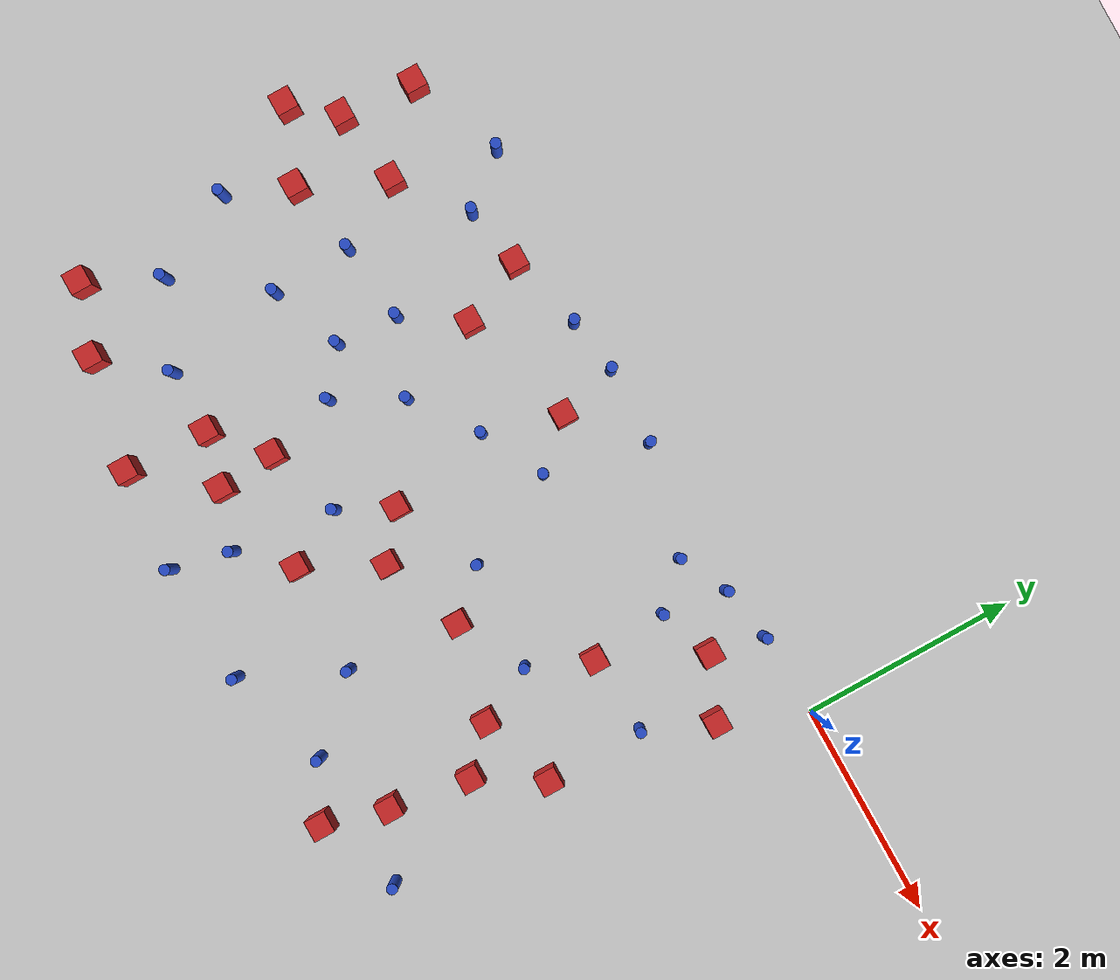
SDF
<sdf version="1.6">
 <world name="default">
  <model name="ground_plane">
   <static>1</static>
   <link name="link">
    <collision name="collision">
     <geometry><plane><normal>0 0 1</normal><size>100 100</size></plane></geometry>
     <surface><friction><ode><mu>100</mu><mu2>50</mu2></ode></friction></surface>
    </collision>
    <visual name="visual">
     <cast_shadows>0</cast_shadows>
     <geometry><plane><normal>0 0 1</normal><size>100 100</size></plane></geometry>
     <material>
      <ambient>1.0 1.0 1.0 1.0</ambient>
      <diffuse>0.8 0.8 0.8 1.0</diffuse>
      <specular>0.01 0.01 0.01 1.000000</specular>
     </material>
    </visual>
   </link>
  </model>
  <model name="pole_obstacle2">
   <static>true</static>
   <pose>-5.38142675522 -3.46980054637 7.38925637345e-09 -8.47170692798e-08 1.24976764937e-08 -1.74513093023e-07</pose>
   <link name="link">
    <pose>0 0 0.3 0 -0 0</pose>
    <inertial>
     <mass>1</mass>
     <inertia><ixx>0.145833</ixx><ixy>0</ixy><ixz>0</ixz><iyy>0.145833</iyy><iyz>0</iyz><izz>0.125</izz></inertia>
    </inertial>
    <collision name="collision">
     <geometry><cylinder><radius>0.05</radius><length>.6</length></cylinder></geometry>
    </collision>
    <visual name="visual">
     <geometry><cylinder><radius>0.05</radius><length>.6</length></cylinder></geometry>
     <material>
      <script><name>Gazebo/Blue</name><uri>file://media/materials/scripts/gazebo.material</uri></script>
     </material>
    </visual>
   </link>
  </model>
  <model name="square_post_obstacle15">
   <static>true</static>
   <pose>-6.63554746986 -1.0725611367 1.91545236811e-07 -7.35059704564e-06 1.12565212e-07 2.39332434364e-05</pose>
   <link name="link">
    <pose>0 0 0.25 0 -0 0</pose>
    <inertial>
     <mass>100</mass>
     <inertia>
      <ixx>0.166667</ixx>
      <ixy>0</ixy>
      <ixz>0</ixz>
      <iyy>0.166667</iyy>
      <iyz>0</iyz>
      <izz>0.166667</izz>
     </inertia>
    </inertial>
    <collision name="collision"><geometry><box><size>.2 .2 .5</size></box></geometry></collision>
    <visual name="visual">
     <geometry><box><size>.2 .2 .5</size></box></geometry>
     <material>
      <script><name>Gazebo/Red</name><uri>file://media/materials/scripts/gazebo.material</uri></script>
     </material>
    </visual>
   </link>
  </model>
  <model name="square_post_obstacle16">
   <static>true</static>
   <pose>-0.980387862571 -2.91094023249 1.91545236811e-07 -7.35059704564e-06 1.12565212e-07 2.39332434364e-05</pose>
   <link name="link">
    <pose>0 0 0.25 0 -0 0</pose>
    <inertial>
     <mass>100</mass>
     <inertia>
      <ixx>0.166667</ixx>
      <ixy>0</ixy>
      <ixz>0</ixz>
      <iyy>0.166667</iyy>
      <iyz>0</iyz>
      <izz>0.166667</izz>
     </inertia>
    </inertial>
    <collision name="collision"><geometry><box><size>.2 .2 .5</size></box></geometry></collision>
    <visual name="visual">
     <geometry><box><size>.2 .2 .5</size></box></geometry>
     <material>
      <script><name>Gazebo/Red</name><uri>file://media/materials/scripts/gazebo.material</uri></script>
     </material>
    </visual>
   </link>
  </model>
  <model name="square_post_obstacle19">
   <static>true</static>
   <pose>-4.28214756523 -3.59136067005 1.91545236811e-07 -7.35059704564e-06 1.12565212e-07 2.39332434364e-05</pose>
   <link name="link">
    <pose>0 0 0.25 0 -0 0</pose>
    <inertial>
     <mass>100</mass>
     <inertia>
      <ixx>0.166667</ixx>
      <ixy>0</ixy>
      <ixz>0</ixz>
      <iyy>0.166667</iyy>
      <iyz>0</iyz>
      <izz>0.166667</izz>
     </inertia>
    </inertial>
    <collision name="collision"><geometry><box><size>.2 .2 .5</size></box></geometry></collision>
    <visual name="visual">
     <geometry><box><size>.2 .2 .5</size></box></geometry>
     <material>
      <script><name>Gazebo/Red</name><uri>file://media/materials/scripts/gazebo.material</uri></script>
     </material>
    </visual>
   </link>
  </model>
  <model name="square_post_obstacle22">
   <static>true</static>
   <pose>-0.627810288311 -2.31708253477 1.91545236811e-07 -7.35059704564e-06 1.12565212e-07 2.39332434364e-05</pose>
   <link name="link">
    <pose>0 0 0.25 0 -0 0</pose>
    <inertial>
     <mass>100</mass>
     <inertia>
      <ixx>0.166667</ixx>
      <ixy>0</ixy>
      <ixz>0</ixz>
      <iyy>0.166667</iyy>
      <iyz>0</iyz>
      <izz>0.166667</izz>
     </inertia>
    </inertial>
    <collision name="collision"><geometry><box><size>.2 .2 .5</size></box></geometry></collision>
    <visual name="visual">
     <geometry><box><size>.2 .2 .5</size></box></geometry>
     <material>
      <script><name>Gazebo/Red</name><uri>file://media/materials/scripts/gazebo.material</uri></script>
     </material>
    </visual>
   </link>
  </model>
  <model name="square_post_obstacle25">
   <static>true</static>
   <pose>-6.46798068062 -3.79343933382 1.91545236811e-07 -7.35059704564e-06 1.12565212e-07 2.39332434364e-05</pose>
   <link name="link">
    <pose>0 0 0.25 0 -0 0</pose>
    <inertial>
     <mass>100</mass>
     <inertia>
      <ixx>0.166667</ixx>
      <ixy>0</ixy>
      <ixz>0</ixz>
      <iyy>0.166667</iyy>
      <iyz>0</iyz>
      <izz>0.166667</izz>
     </inertia>
    </inertial>
    <collision name="collision"><geometry><box><size>.2 .2 .5</size></box></geometry></collision>
    <visual name="visual">
     <geometry><box><size>.2 .2 .5</size></box></geometry>
     <material>
      <script><name>Gazebo/Red</name><uri>file://media/materials/scripts/gazebo.material</uri></script>
     </material>
    </visual>
   </link>
  </model>
  <model name="square_post_obstacle26">
   <static>true</static>
   <pose>-4.81714766103 -4.24669240295 1.91545236811e-07 -7.35059704564e-06 1.12565212e-07 2.39332434364e-05</pose>
   <link name="link">
    <pose>0 0 0.25 0 -0 0</pose>
    <inertial>
     <mass>100</mass>
     <inertia>
      <ixx>0.166667</ixx>
      <ixy>0</ixy>
      <ixz>0</ixz>
      <iyy>0.166667</iyy>
      <iyz>0</iyz>
      <izz>0.166667</izz>
     </inertia>
    </inertial>
    <collision name="collision"><geometry><box><size>.2 .2 .5</size></box></geometry></collision>
    <visual name="visual">
     <geometry><box><size>.2 .2 .5</size></box></geometry>
     <material>
      <script><name>Gazebo/Red</name><uri>file://media/materials/scripts/gazebo.material</uri></script>
     </material>
    </visual>
   </link>
  </model>
  <model name="square_post_obstacle28">
   <static>true</static>
   <pose>-2.98242574539 -2.64085419925 1.91545236811e-07 -7.35059704564e-06 1.12565212e-07 2.39332434364e-05</pose>
   <link name="link">
    <pose>0 0 0.25 0 -0 0</pose>
    <inertial>
     <mass>100</mass>
     <inertia>
      <ixx>0.166667</ixx>
      <ixy>0</ixy>
      <ixz>0</ixz>
      <iyy>0.166667</iyy>
      <iyz>0</iyz>
      <izz>0.166667</izz>
     </inertia>
    </inertial>
    <collision name="collision"><geometry><box><size>.2 .2 .5</size></box></geometry></collision>
    <visual name="visual">
     <geometry><box><size>.2 .2 .5</size></box></geometry>
     <material>
      <script><name>Gazebo/Red</name><uri>file://media/materials/scripts/gazebo.material</uri></script>
     </material>
    </visual>
   </link>
  </model>
  <model name="square_post_obstacle30">
   <static>true</static>
   <pose>-4.76900405241 -0.365671059773 1.91545236811e-07 -7.35059704564e-06 1.12565212e-07 2.39332434364e-05</pose>
   <link name="link">
    <pose>0 0 0.25 0 -0 0</pose>
    <inertial>
     <mass>100</mass>
     <inertia>
      <ixx>0.166667</ixx>
      <ixy>0</ixy>
      <ixz>0</ixz>
      <iyy>0.166667</iyy>
      <iyz>0</iyz>
      <izz>0.166667</izz>
     </inertia>
    </inertial>
    <collision name="collision"><geometry><box><size>.2 .2 .5</size></box></geometry></collision>
    <visual name="visual">
     <geometry><box><size>.2 .2 .5</size></box></geometry>
     <material>
      <script><name>Gazebo/Red</name><uri>file://media/materials/scripts/gazebo.material</uri></script>
     </material>
    </visual>
   </link>
  </model>
  <model name="square_post_obstacle34">
   <static>true</static>
   <pose>-1.093113975 -3.65987928961 1.91545236811e-07 -7.35059704564e-06 1.12565212e-07 2.39332434364e-05</pose>
   <link name="link">
    <pose>0 0 0.25 0 -0 0</pose>
    <inertial>
     <mass>100</mass>
     <inertia>
      <ixx>0.166667</ixx>
      <ixy>0</ixy>
      <ixz>0</ixz>
      <iyy>0.166667</iyy>
      <iyz>0</iyz>
      <izz>0.166667</izz>
     </inertia>
    </inertial>
    <collision name="collision"><geometry><box><size>.2 .2 .5</size></box></geometry></collision>
    <visual name="visual">
     <geometry><box><size>.2 .2 .5</size></box></geometry>
     <material>
      <script><name>Gazebo/Red</name><uri>file://media/materials/scripts/gazebo.material</uri></script>
     </material>
    </visual>
   </link>
  </model>
  <model name="pole_obstacle33">
   <static>true</static>
   <pose>-6.54553230775 -2.32718470068 7.38925637345e-09 -8.47170692798e-08 1.24976764937e-08 -1.74513093023e-07</pose>
   <link name="link">
    <pose>0 0 0.3 0 -0 0</pose>
    <inertial>
     <mass>1</mass>
     <inertia><ixx>0.145833</ixx><ixy>0</ixy><ixz>0</ixz><iyy>0.145833</iyy><iyz>0</iyz><izz>0.125</izz></inertia>
    </inertial>
    <collision name="collision">
     <geometry><cylinder><radius>0.05</radius><length>.6</length></cylinder></geometry>
    </collision>
    <visual name="visual">
     <geometry><cylinder><radius>0.05</radius><length>.6</length></cylinder></geometry>
     <material>
      <script><name>Gazebo/Blue</name><uri>file://media/materials/scripts/gazebo.material</uri></script>
     </material>
    </visual>
   </link>
  </model>
  <model name="pole_obstacle44">
   <static>true</static>
   <pose>-3.59134192762 -1.35565609729 7.38925637345e-09 -8.47170692796e-08 1.24976764713e-08 -1.74513093037e-07</pose>
   <link name="link">
    <pose>0 0 0.3 0 -0 0</pose>
    <inertial>
     <mass>1</mass>
     <inertia><ixx>0.145833</ixx><ixy>0</ixy><ixz>0</ixz><iyy>0.145833</iyy><iyz>0</iyz><izz>0.125</izz></inertia>
    </inertial>
    <collision name="collision">
     <geometry><cylinder><radius>0.05</radius><length>.6</length></cylinder></geometry>
    </collision>
    <visual name="visual">
     <geometry><cylinder><radius>0.05</radius><length>.6</length></cylinder></geometry>
     <material>
      <script><name>Gazebo/Blue</name><uri>file://media/materials/scripts/gazebo.material</uri></script>
     </material>
    </visual>
   </link>
  </model>
  <model name="square_post_obstacle59">
   <static>true</static>
   <pose>-1.35754683257 -1.4523518586 1.91545236811e-07 -7.35059704564e-06 1.12565212e-07 2.39332434364e-05</pose>
   <link name="link">
    <pose>0 0 0.25 0 -0 0</pose>
    <inertial>
     <mass>100</mass>
     <inertia>
      <ixx>0.166667</ixx>
      <ixy>0</ixy>
      <ixz>0</ixz>
      <iyy>0.166667</iyy>
      <iyz>0</iyz>
      <izz>0.166667</izz>
     </inertia>
    </inertial>
    <collision name="collision"><geometry><box><size>.2 .2 .5</size></box></geometry></collision>
    <visual name="visual">
     <geometry><box><size>.2 .2 .5</size></box></geometry>
     <material>
      <script><name>Gazebo/Red</name><uri>file://media/materials/scripts/gazebo.material</uri></script>
     </material>
    </visual>
   </link>
  </model>
  <model name="square_post_obstacle64">
   <static>true</static>
   <pose>-0.356073567444 -0.783404883348 1.91545236811e-07 -7.35059704564e-06 1.12565212e-07 2.39332434364e-05</pose>
   <link name="link">
    <pose>0 0 0.25 0 -0 0</pose>
    <inertial>
     <mass>100</mass>
     <inertia>
      <ixx>0.166667</ixx>
      <ixy>0</ixy>
      <ixz>0</ixz>
      <iyy>0.166667</iyy>
      <iyz>0</iyz>
      <izz>0.166667</izz>
     </inertia>
    </inertial>
    <collision name="collision"><geometry><box><size>.2 .2 .5</size></box></geometry></collision>
    <visual name="visual">
     <geometry><box><size>.2 .2 .5</size></box></geometry>
     <material>
      <script><name>Gazebo/Red</name><uri>file://media/materials/scripts/gazebo.material</uri></script>
     </material>
    </visual>
   </link>
  </model>
  <model name="square_post_obstacle71">
   <static>true</static>
   <pose>-5.84186291157 -4.0312585812 1.91545236811e-07 -7.35059704564e-06 1.12565212e-07 2.39332434364e-05</pose>
   <link name="link">
    <pose>0 0 0.25 0 -0 0</pose>
    <inertial>
     <mass>100</mass>
     <inertia>
      <ixx>0.166667</ixx>
      <ixy>0</ixy>
      <ixz>0</ixz>
      <iyy>0.166667</iyy>
      <iyz>0</iyz>
      <izz>0.166667</izz>
     </inertia>
    </inertial>
    <collision name="collision"><geometry><box><size>.2 .2 .5</size></box></geometry></collision>
    <visual name="visual">
     <geometry><box><size>.2 .2 .5</size></box></geometry>
     <material>
      <script><name>Gazebo/Red</name><uri>file://media/materials/scripts/gazebo.material</uri></script>
     </material>
    </visual>
   </link>
  </model>
  <model name="pole_obstacle74">
   <static>true</static>
   <pose>-2.33085970781 -3.38845330504 7.38925637345e-09 -8.47170692798e-08 1.24976764939e-08 -1.74513093025e-07</pose>
   <link name="link">
    <pose>0 0 0.3 0 -0 0</pose>
    <inertial>
     <mass>1</mass>
     <inertia><ixx>0.145833</ixx><ixy>0</ixy><ixz>0</ixz><iyy>0.145833</iyy><iyz>0</iyz><izz>0.125</izz></inertia>
    </inertial>
    <collision name="collision">
     <geometry><cylinder><radius>0.05</radius><length>.6</length></cylinder></geometry>
    </collision>
    <visual name="visual">
     <geometry><cylinder><radius>0.05</radius><length>.6</length></cylinder></geometry>
     <material>
      <script><name>Gazebo/Blue</name><uri>file://media/materials/scripts/gazebo.material</uri></script>
     </material>
    </visual>
   </link>
  </model>
  <model name="square_post_obstacle77">
   <static>true</static>
   <pose>-6.28989270197 -1.73136755375 1.91545236811e-07 -7.35059704564e-06 1.12565212e-07 2.39332434364e-05</pose>
   <link name="link">
    <pose>0 0 0.25 0 -0 0</pose>
    <inertial>
     <mass>100</mass>
     <inertia>
      <ixx>0.166667</ixx>
      <ixy>0</ixy>
      <ixz>0</ixz>
      <iyy>0.166667</iyy>
      <iyz>0</iyz>
      <izz>0.166667</izz>
     </inertia>
    </inertial>
    <collision name="collision"><geometry><box><size>.2 .2 .5</size></box></geometry></collision>
    <visual name="visual">
     <geometry><box><size>.2 .2 .5</size></box></geometry>
     <material>
      <script><name>Gazebo/Red</name><uri>file://media/materials/scripts/gazebo.material</uri></script>
     </material>
    </visual>
   </link>
  </model>
  <model name="pole_obstacle80">
   <static>true</static>
   <pose>-5.588898609 -1.58997670715 7.38925637345e-09 -8.471706928e-08 1.24976765134e-08 -1.74513093015e-07</pose>
   <link name="link">
    <pose>0 0 0.3 0 -0 0</pose>
    <inertial>
     <mass>1</mass>
     <inertia><ixx>0.145833</ixx><ixy>0</ixy><ixz>0</ixz><iyy>0.145833</iyy><iyz>0</iyz><izz>0.125</izz></inertia>
    </inertial>
    <collision name="collision">
     <geometry><cylinder><radius>0.05</radius><length>.6</length></cylinder></geometry>
    </collision>
    <visual name="visual">
     <geometry><cylinder><radius>0.05</radius><length>.6</length></cylinder></geometry>
     <material>
      <script><name>Gazebo/Blue</name><uri>file://media/materials/scripts/gazebo.material</uri></script>
     </material>
    </visual>
   </link>
  </model>
  <model name="pole_obstacle84">
   <static>true</static>
   <pose>-2.7553563836 -4.29183904211 7.38925637345e-09 -8.47170692798e-08 1.24976765033e-08 -1.74513093019e-07</pose>
   <link name="link">
    <pose>0 0 0.3 0 -0 0</pose>
    <inertial>
     <mass>1</mass>
     <inertia><ixx>0.145833</ixx><ixy>0</ixy><ixz>0</ixz><iyy>0.145833</iyy><iyz>0</iyz><izz>0.125</izz></inertia>
    </inertial>
    <collision name="collision">
     <geometry><cylinder><radius>0.05</radius><length>.6</length></cylinder></geometry>
    </collision>
    <visual name="visual">
     <geometry><cylinder><radius>0.05</radius><length>.6</length></cylinder></geometry>
     <material>
      <script><name>Gazebo/Blue</name><uri>file://media/materials/scripts/gazebo.material</uri></script>
     </material>
    </visual>
   </link>
  </model>
  <model name="pole_obstacle87">
   <static>true</static>
   <pose>-0.62110609969 -1.40363559387 7.38925637345e-09 -8.47170692799e-08 1.24976765033e-08 -1.7451309302e-07</pose>
   <link name="link">
    <pose>0 0 0.3 0 -0 0</pose>
    <inertial>
     <mass>1</mass>
     <inertia><ixx>0.145833</ixx><ixy>0</ixy><ixz>0</ixz><iyy>0.145833</iyy><iyz>0</iyz><izz>0.125</izz></inertia>
    </inertial>
    <collision name="collision">
     <geometry><cylinder><radius>0.05</radius><length>.6</length></cylinder></geometry>
    </collision>
    <visual name="visual">
     <geometry><cylinder><radius>0.05</radius><length>.6</length></cylinder></geometry>
     <material>
      <script><name>Gazebo/Blue</name><uri>file://media/materials/scripts/gazebo.material</uri></script>
     </material>
    </visual>
   </link>
  </model>
  <model name="pole_obstacle88">
   <static>true</static>
   <pose>-4.85939433383 -1.50722507727 7.38925637345e-09 -8.471706928e-08 1.24976765134e-08 -1.74513093015e-07</pose>
   <link name="link">
    <pose>0 0 0.3 0 -0 0</pose>
    <inertial>
     <mass>1</mass>
     <inertia><ixx>0.145833</ixx><ixy>0</ixy><ixz>0</ixz><iyy>0.145833</iyy><iyz>0</iyz><izz>0.125</izz></inertia>
    </inertial>
    <collision name="collision">
     <geometry><cylinder><radius>0.05</radius><length>.6</length></cylinder></geometry>
    </collision>
    <visual name="visual">
     <geometry><cylinder><radius>0.05</radius><length>.6</length></cylinder></geometry>
     <material>
      <script><name>Gazebo/Blue</name><uri>file://media/materials/scripts/gazebo.material</uri></script>
     </material>
    </visual>
   </link>
  </model>
  <model name="square_post_obstacle85">
   <static>true</static>
   <pose>-3.38546086479 -0.642851858333 1.91545236811e-07 -7.35059704564e-06 1.12565212e-07 2.39332434364e-05</pose>
   <link name="link">
    <pose>0 0 0.25 0 -0 0</pose>
    <inertial>
     <mass>100</mass>
     <inertia>
      <ixx>0.166667</ixx>
      <ixy>0</ixy>
      <ixz>0</ixz>
      <iyy>0.166667</iyy>
      <iyz>0</iyz>
      <izz>0.166667</izz>
     </inertia>
    </inertial>
    <collision name="collision"><geometry><box><size>.2 .2 .5</size></box></geometry></collision>
    <visual name="visual">
     <geometry><box><size>.2 .2 .5</size></box></geometry>
     <material>
      <script><name>Gazebo/Red</name><uri>file://media/materials/scripts/gazebo.material</uri></script>
     </material>
    </visual>
   </link>
  </model>
  <model name="square_post_obstacle91">
   <static>true</static>
   <pose>-3.35051383092 -3.348216367 1.91545236811e-07 -7.35059704564e-06 1.12565212e-07 2.39332434364e-05</pose>
   <link name="link">
    <pose>0 0 0.25 0 -0 0</pose>
    <inertial>
     <mass>100</mass>
     <inertia>
      <ixx>0.166667</ixx>
      <ixy>0</ixy>
      <ixz>0</ixz>
      <iyy>0.166667</iyy>
      <iyz>0</iyz>
      <izz>0.166667</izz>
     </inertia>
    </inertial>
    <collision name="collision"><geometry><box><size>.2 .2 .5</size></box></geometry></collision>
    <visual name="visual">
     <geometry><box><size>.2 .2 .5</size></box></geometry>
     <material>
      <script><name>Gazebo/Red</name><uri>file://media/materials/scripts/gazebo.material</uri></script>
     </material>
    </visual>
   </link>
  </model>
  <model name="square_post_obstacle93">
   <static>true</static>
   <pose>-2.22517822564 -2.35212511262 1.91545236811e-07 -7.35059704564e-06 1.12565212e-07 2.39332434364e-05</pose>
   <link name="link">
    <pose>0 0 0.25 0 -0 0</pose>
    <inertial>
     <mass>100</mass>
     <inertia>
      <ixx>0.166667</ixx>
      <ixy>0</ixy>
      <ixz>0</ixz>
      <iyy>0.166667</iyy>
      <iyz>0</iyz>
      <izz>0.166667</izz>
     </inertia>
    </inertial>
    <collision name="collision"><geometry><box><size>.2 .2 .5</size></box></geometry></collision>
    <visual name="visual">
     <geometry><box><size>.2 .2 .5</size></box></geometry>
     <material>
      <script><name>Gazebo/Red</name><uri>file://media/materials/scripts/gazebo.material</uri></script>
     </material>
    </visual>
   </link>
  </model>
  <model name="pole_obstacle105">
   <static>true</static>
   <pose>-0.48616510923 -3.95364297576 7.38925637345e-09 -8.471706928e-08 1.24976765081e-08 -1.74513093015e-07</pose>
   <link name="link">
    <pose>0 0 0.3 0 -0 0</pose>
    <inertial>
     <mass>1</mass>
     <inertia><ixx>0.145833</ixx><ixy>0</ixy><ixz>0</ixz><iyy>0.145833</iyy><iyz>0</iyz><izz>0.125</izz></inertia>
    </inertial>
    <collision name="collision">
     <geometry><cylinder><radius>0.05</radius><length>.6</length></cylinder></geometry>
    </collision>
    <visual name="visual">
     <geometry><cylinder><radius>0.05</radius><length>.6</length></cylinder></geometry>
     <material>
      <script><name>Gazebo/Blue</name><uri>file://media/materials/scripts/gazebo.material</uri></script>
     </material>
    </visual>
   </link>
  </model>
  <model name="square_post_obstacle99">
   <static>true</static>
   <pose>-3.38834026939 -2.32274445864 1.91545236811e-07 -7.35059704564e-06 1.12565212e-07 2.39332434364e-05</pose>
   <link name="link">
    <pose>0 0 0.25 0 -0 0</pose>
    <inertial>
     <mass>100</mass>
     <inertia>
      <ixx>0.166667</ixx>
      <ixy>0</ixy>
      <ixz>0</ixz>
      <iyy>0.166667</iyy>
      <iyz>0</iyz>
      <izz>0.166667</izz>
     </inertia>
    </inertial>
    <collision name="collision"><geometry><box><size>.2 .2 .5</size></box></geometry></collision>
    <visual name="visual">
     <geometry><box><size>.2 .2 .5</size></box></geometry>
     <material>
      <script><name>Gazebo/Red</name><uri>file://media/materials/scripts/gazebo.material</uri></script>
     </material>
    </visual>
   </link>
  </model>
  <model name="pole_obstacle113">
   <static>true</static>
   <pose>-1.77847440267 -3.9937022802 7.38925637345e-09 -8.471706928e-08 1.24976765103e-08 -1.74513093014e-07</pose>
   <link name="link">
    <pose>0 0 0.3 0 -0 0</pose>
    <inertial>
     <mass>1</mass>
     <inertia><ixx>0.145833</ixx><ixy>0</ixy><ixz>0</ixz><iyy>0.145833</iyy><iyz>0</iyz><izz>0.125</izz></inertia>
    </inertial>
    <collision name="collision">
     <geometry><cylinder><radius>0.05</radius><length>.6</length></cylinder></geometry>
    </collision>
    <visual name="visual">
     <geometry><cylinder><radius>0.05</radius><length>.6</length></cylinder></geometry>
     <material>
      <script><name>Gazebo/Blue</name><uri>file://media/materials/scripts/gazebo.material</uri></script>
     </material>
    </visual>
   </link>
  </model>
  <model name="pole_obstacle125">
   <static>true</static>
   <pose>-3.74428500968 -3.78072300067 7.38925637345e-09 -8.47170692798e-08 1.24976764939e-08 -1.74513093025e-07</pose>
   <link name="link">
    <pose>0 0 0.3 0 -0 0</pose>
    <inertial>
     <mass>1</mass>
     <inertia><ixx>0.145833</ixx><ixy>0</ixy><ixz>0</ixz><iyy>0.145833</iyy><iyz>0</iyz><izz>0.125</izz></inertia>
    </inertial>
    <collision name="collision">
     <geometry><cylinder><radius>0.05</radius><length>.6</length></cylinder></geometry>
    </collision>
    <visual name="visual">
     <geometry><cylinder><radius>0.05</radius><length>.6</length></cylinder></geometry>
     <material>
      <script><name>Gazebo/Blue</name><uri>file://media/materials/scripts/gazebo.material</uri></script>
     </material>
    </visual>
   </link>
  </model>
  <model name="pole_obstacle126">
   <static>true</static>
   <pose>-1.32401901308 -0.139205662608 7.38925637345e-09 -8.47170692798e-08 1.24976765004e-08 -1.7451309302e-07</pose>
   <link name="link">
    <pose>0 0 0.3 0 -0 0</pose>
    <inertial>
     <mass>1</mass>
     <inertia><ixx>0.145833</ixx><ixy>0</ixy><ixz>0</ixz><iyy>0.145833</iyy><iyz>0</iyz><izz>0.125</izz></inertia>
    </inertial>
    <collision name="collision">
     <geometry><cylinder><radius>0.05</radius><length>.6</length></cylinder></geometry>
    </collision>
    <visual name="visual">
     <geometry><cylinder><radius>0.05</radius><length>.6</length></cylinder></geometry>
     <material>
      <script><name>Gazebo/Blue</name><uri>file://media/materials/scripts/gazebo.material</uri></script>
     </material>
    </visual>
   </link>
  </model>
  <model name="pole_obstacle132">
   <static>true</static>
   <pose>-3.52542103041 -0.0788988232357 7.38925637345e-09 -8.471706928e-08 1.24976765088e-08 -1.74513093017e-07</pose>
   <link name="link">
    <pose>0 0 0.3 0 -0 0</pose>
    <inertial>
     <mass>1</mass>
     <inertia><ixx>0.145833</ixx><ixy>0</ixy><ixz>0</ixz><iyy>0.145833</iyy><iyz>0</iyz><izz>0.125</izz></inertia>
    </inertial>
    <collision name="collision">
     <geometry><cylinder><radius>0.05</radius><length>.6</length></cylinder></geometry>
    </collision>
    <visual name="visual">
     <geometry><cylinder><radius>0.05</radius><length>.6</length></cylinder></geometry>
     <material>
      <script><name>Gazebo/Blue</name><uri>file://media/materials/scripts/gazebo.material</uri></script>
     </material>
    </visual>
   </link>
  </model>
  <model name="square_post_obstacle115">
   <static>true</static>
   <pose>-6.96098390381 -1.45668449698 1.91545236811e-07 -7.35059704564e-06 1.12565212e-07 2.39332434364e-05</pose>
   <link name="link">
    <pose>0 0 0.25 0 -0 0</pose>
    <inertial>
     <mass>100</mass>
     <inertia>
      <ixx>0.166667</ixx>
      <ixy>0</ixy>
      <ixz>0</ixz>
      <iyy>0.166667</iyy>
      <iyz>0</iyz>
      <izz>0.166667</izz>
     </inertia>
    </inertial>
    <collision name="collision"><geometry><box><size>.2 .2 .5</size></box></geometry></collision>
    <visual name="visual">
     <geometry><box><size>.2 .2 .5</size></box></geometry>
     <material>
      <script><name>Gazebo/Red</name><uri>file://media/materials/scripts/gazebo.material</uri></script>
     </material>
    </visual>
   </link>
  </model>
  <model name="square_post_obstacle121">
   <static>true</static>
   <pose>-4.32526539329 -3.05539992471 1.91545236811e-07 -7.35059704564e-06 1.12565212e-07 2.39332434364e-05</pose>
   <link name="link">
    <pose>0 0 0.25 0 -0 0</pose>
    <inertial>
     <mass>100</mass>
     <inertia>
      <ixx>0.166667</ixx>
      <ixy>0</ixy>
      <ixz>0</ixz>
      <iyy>0.166667</iyy>
      <iyz>0</iyz>
      <izz>0.166667</izz>
     </inertia>
    </inertial>
    <collision name="collision"><geometry><box><size>.2 .2 .5</size></box></geometry></collision>
    <visual name="visual">
     <geometry><box><size>.2 .2 .5</size></box></geometry>
     <material>
      <script><name>Gazebo/Red</name><uri>file://media/materials/scripts/gazebo.material</uri></script>
     </material>
    </visual>
   </link>
  </model>
  <model name="square_post_obstacle130">
   <static>true</static>
   <pose>-1.34482599598 -2.55570255908 1.91545236811e-07 -7.35059704564e-06 1.12565212e-07 2.39332434364e-05</pose>
   <link name="link">
    <pose>0 0 0.25 0 -0 0</pose>
    <inertial>
     <mass>100</mass>
     <inertia>
      <ixx>0.166667</ixx>
      <ixy>0</ixy>
      <ixz>0</ixz>
      <iyy>0.166667</iyy>
      <iyz>0</iyz>
      <izz>0.166667</izz>
     </inertia>
    </inertial>
    <collision name="collision"><geometry><box><size>.2 .2 .5</size></box></geometry></collision>
    <visual name="visual">
     <geometry><box><size>.2 .2 .5</size></box></geometry>
     <material>
      <script><name>Gazebo/Red</name><uri>file://media/materials/scripts/gazebo.material</uri></script>
     </material>
    </visual>
   </link>
  </model>
  <model name="square_post_obstacle133">
   <static>true</static>
   <pose>-6.57890906202 -0.376502928126 1.91545236811e-07 -7.35059704564e-06 1.12565212e-07 2.39332434364e-05</pose>
   <link name="link">
    <pose>0 0 0.25 0 -0 0</pose>
    <inertial>
     <mass>100</mass>
     <inertia>
      <ixx>0.166667</ixx>
      <ixy>0</ixy>
      <ixz>0</ixz>
      <iyy>0.166667</iyy>
      <iyz>0</iyz>
      <izz>0.166667</izz>
     </inertia>
    </inertial>
    <collision name="collision"><geometry><box><size>.2 .2 .5</size></box></geometry></collision>
    <visual name="visual">
     <geometry><box><size>.2 .2 .5</size></box></geometry>
     <material>
      <script><name>Gazebo/Red</name><uri>file://media/materials/scripts/gazebo.material</uri></script>
     </material>
    </visual>
   </link>
  </model>
  <model name="pole_obstacle144">
   <static>true</static>
   <pose>-3.63124527315 -2.81808188732 7.38925637345e-09 -8.47170692798e-08 1.24976764939e-08 -1.74513093025e-07</pose>
   <link name="link">
    <pose>0 0 0.3 0 -0 0</pose>
    <inertial>
     <mass>1</mass>
     <inertia><ixx>0.145833</ixx><ixy>0</ixy><ixz>0</ixz><iyy>0.145833</iyy><iyz>0</iyz><izz>0.125</izz></inertia>
    </inertial>
    <collision name="collision">
     <geometry><cylinder><radius>0.05</radius><length>.6</length></cylinder></geometry>
    </collision>
    <visual name="visual">
     <geometry><cylinder><radius>0.05</radius><length>.6</length></cylinder></geometry>
     <material>
      <script><name>Gazebo/Blue</name><uri>file://media/materials/scripts/gazebo.material</uri></script>
     </material>
    </visual>
   </link>
  </model>
  <model name="square_post_obstacle145">
   <static>true</static>
   <pose>-0.914130557711 -0.540611516582 1.91545236811e-07 -7.35059704564e-06 1.12565212e-07 2.39332434364e-05</pose>
   <link name="link">
    <pose>0 0 0.25 0 -0 0</pose>
    <inertial>
     <mass>100</mass>
     <inertia>
      <ixx>0.166667</ixx>
      <ixy>0</ixy>
      <ixz>0</ixz>
      <iyy>0.166667</iyy>
      <iyz>0</iyz>
      <izz>0.166667</izz>
     </inertia>
    </inertial>
    <collision name="collision"><geometry><box><size>.2 .2 .5</size></box></geometry></collision>
    <visual name="visual">
     <geometry><box><size>.2 .2 .5</size></box></geometry>
     <material>
      <script><name>Gazebo/Red</name><uri>file://media/materials/scripts/gazebo.material</uri></script>
     </material>
    </visual>
   </link>
  </model>
  <model name="pole_obstacle165">
   <static>true</static>
   <pose>-1.77206338817 -0.361732222276 7.38925637345e-09 -8.47170692799e-08 1.24976765065e-08 -1.74513093017e-07</pose>
   <link name="link">
    <pose>0 0 0.3 0 -0 0</pose>
    <inertial>
     <mass>1</mass>
     <inertia><ixx>0.145833</ixx><ixy>0</ixy><ixz>0</ixz><iyy>0.145833</iyy><iyz>0</iyz><izz>0.125</izz></inertia>
    </inertial>
    <collision name="collision">
     <geometry><cylinder><radius>0.05</radius><length>.6</length></cylinder></geometry>
    </collision>
    <visual name="visual">
     <geometry><cylinder><radius>0.05</radius><length>.6</length></cylinder></geometry>
     <material>
      <script><name>Gazebo/Blue</name><uri>file://media/materials/scripts/gazebo.material</uri></script>
     </material>
    </visual>
   </link>
  </model>
  <model name="pole_obstacle170">
   <static>true</static>
   <pose>-2.59273391709 -1.94883324799 7.38925637345e-09 -8.471706928e-08 1.24976765152e-08 -1.74513093012e-07</pose>
   <link name="link">
    <pose>0 0 0.3 0 -0 0</pose>
    <inertial>
     <mass>1</mass>
     <inertia><ixx>0.145833</ixx><ixy>0</ixy><ixz>0</ixz><iyy>0.145833</iyy><iyz>0</iyz><izz>0.125</izz></inertia>
    </inertial>
    <collision name="collision">
     <geometry><cylinder><radius>0.05</radius><length>.6</length></cylinder></geometry>
    </collision>
    <visual name="visual">
     <geometry><cylinder><radius>0.05</radius><length>.6</length></cylinder></geometry>
     <material>
      <script><name>Gazebo/Blue</name><uri>file://media/materials/scripts/gazebo.material</uri></script>
     </material>
    </visual>
   </link>
  </model>
  <model name="pole_obstacle176">
   <static>true</static>
   <pose>-3.0068580534 -1.0548012321 7.38925637345e-09 -8.471706928e-08 1.24976765152e-08 -1.74513093012e-07</pose>
   <link name="link">
    <pose>0 0 0.3 0 -0 0</pose>
    <inertial>
     <mass>1</mass>
     <inertia><ixx>0.145833</ixx><ixy>0</ixy><ixz>0</ixz><iyy>0.145833</iyy><iyz>0</iyz><izz>0.125</izz></inertia>
    </inertial>
    <collision name="collision">
     <geometry><cylinder><radius>0.05</radius><length>.6</length></cylinder></geometry>
    </collision>
    <visual name="visual">
     <geometry><cylinder><radius>0.05</radius><length>.6</length></cylinder></geometry>
     <material>
      <script><name>Gazebo/Blue</name><uri>file://media/materials/scripts/gazebo.material</uri></script>
     </material>
    </visual>
   </link>
  </model>
  <model name="pole_obstacle177">
   <static>true</static>
   <pose>-1.60050500024 -2.02374152461 7.38925637345e-09 -8.47170692798e-08 1.24976764909e-08 -1.74513093024e-07</pose>
   <link name="link">
    <pose>0 0 0.3 0 -0 0</pose>
    <inertial>
     <mass>1</mass>
     <inertia><ixx>0.145833</ixx><ixy>0</ixy><ixz>0</ixz><iyy>0.145833</iyy><iyz>0</iyz><izz>0.125</izz></inertia>
    </inertial>
    <collision name="collision">
     <geometry><cylinder><radius>0.05</radius><length>.6</length></cylinder></geometry>
    </collision>
    <visual name="visual">
     <geometry><cylinder><radius>0.05</radius><length>.6</length></cylinder></geometry>
     <material>
      <script><name>Gazebo/Blue</name><uri>file://media/materials/scripts/gazebo.material</uri></script>
     </material>
    </visual>
   </link>
  </model>
  <model name="square_post_obstacle170">
   <static>true</static>
   <pose>-5.9357755639 -0.963053794089 1.91545236811e-07 -7.35059704564e-06 1.12565212e-07 2.39332434364e-05</pose>
   <link name="link">
    <pose>0 0 0.25 0 -0 0</pose>
    <inertial>
     <mass>100</mass>
     <inertia>
      <ixx>0.166667</ixx>
      <ixy>0</ixy>
      <ixz>0</ixz>
      <iyy>0.166667</iyy>
      <iyz>0</iyz>
      <izz>0.166667</izz>
     </inertia>
    </inertial>
    <collision name="collision"><geometry><box><size>.2 .2 .5</size></box></geometry></collision>
    <visual name="visual">
     <geometry><box><size>.2 .2 .5</size></box></geometry>
     <material>
      <script><name>Gazebo/Red</name><uri>file://media/materials/scripts/gazebo.material</uri></script>
     </material>
    </visual>
   </link>
  </model>
  <model name="pole_obstacle182">
   <static>true</static>
   <pose>-4.17604589535 -1.78013472798 7.38925637345e-09 -8.471706928e-08 1.24976765134e-08 -1.74513093015e-07</pose>
   <link name="link">
    <pose>0 0 0.3 0 -0 0</pose>
    <inertial>
     <mass>1</mass>
     <inertia><ixx>0.145833</ixx><ixy>0</ixy><ixz>0</ixz><iyy>0.145833</iyy><iyz>0</iyz><izz>0.125</izz></inertia>
    </inertial>
    <collision name="collision">
     <geometry><cylinder><radius>0.05</radius><length>.6</length></cylinder></geometry>
    </collision>
    <visual name="visual">
     <geometry><cylinder><radius>0.05</radius><length>.6</length></cylinder></geometry>
     <material>
      <script><name>Gazebo/Blue</name><uri>file://media/materials/scripts/gazebo.material</uri></script>
     </material>
    </visual>
   </link>
  </model>
  <model name="pole_obstacle187">
   <static>true</static>
   <pose>-4.89965670117 -2.08032664569 7.38925637345e-09 -8.47170692798e-08 1.24976764937e-08 -1.74513093023e-07</pose>
   <link name="link">
    <pose>0 0 0.3 0 -0 0</pose>
    <inertial>
     <mass>1</mass>
     <inertia><ixx>0.145833</ixx><ixy>0</ixy><ixz>0</ixz><iyy>0.145833</iyy><iyz>0</iyz><izz>0.125</izz></inertia>
    </inertial>
    <collision name="collision">
     <geometry><cylinder><radius>0.05</radius><length>.6</length></cylinder></geometry>
    </collision>
    <visual name="visual">
     <geometry><cylinder><radius>0.05</radius><length>.6</length></cylinder></geometry>
     <material>
      <script><name>Gazebo/Blue</name><uri>file://media/materials/scripts/gazebo.material</uri></script>
     </material>
    </visual>
   </link>
  </model>
  <model name="square_post_obstacle185">
   <static>true</static>
   <pose>-1.25992734559 -4.25837988657 1.91545236811e-07 -7.35059704564e-06 1.12565212e-07 2.39332434364e-05</pose>
   <link name="link">
    <pose>0 0 0.25 0 -0 0</pose>
    <inertial>
     <mass>100</mass>
     <inertia>
      <ixx>0.166667</ixx>
      <ixy>0</ixy>
      <ixz>0</ixz>
      <iyy>0.166667</iyy>
      <iyz>0</iyz>
      <izz>0.166667</izz>
     </inertia>
    </inertial>
    <collision name="collision"><geometry><box><size>.2 .2 .5</size></box></geometry></collision>
    <visual name="visual">
     <geometry><box><size>.2 .2 .5</size></box></geometry>
     <material>
      <script><name>Gazebo/Red</name><uri>file://media/materials/scripts/gazebo.material</uri></script>
     </material>
    </visual>
   </link>
  </model>
  <model name="square_post_obstacle195">
   <static>true</static>
   <pose>-4.49843092291 -0.968936582542 1.91545236811e-07 -7.35059704564e-06 1.12565212e-07 2.39332434364e-05</pose>
   <link name="link">
    <pose>0 0 0.25 0 -0 0</pose>
    <inertial>
     <mass>100</mass>
     <inertia>
      <ixx>0.166667</ixx>
      <ixy>0</ixy>
      <ixz>0</ixz>
      <iyy>0.166667</iyy>
      <iyz>0</iyz>
      <izz>0.166667</izz>
     </inertia>
    </inertial>
    <collision name="collision"><geometry><box><size>.2 .2 .5</size></box></geometry></collision>
    <visual name="visual">
     <geometry><box><size>.2 .2 .5</size></box></geometry>
     <material>
      <script><name>Gazebo/Red</name><uri>file://media/materials/scripts/gazebo.material</uri></script>
     </material>
    </visual>
   </link>
  </model>
  <model name="pole_obstacle195">
   <static>true</static>
   <pose>-4.50443019148 -2.39070732542 7.38925637345e-09 -8.47170692798e-08 1.24976764937e-08 -1.74513093023e-07</pose>
   <link name="link">
    <pose>0 0 0.3 0 -0 0</pose>
    <inertial>
     <mass>1</mass>
     <inertia><ixx>0.145833</ixx><ixy>0</ixy><ixz>0</ixz><iyy>0.145833</iyy><iyz>0</iyz><izz>0.125</izz></inertia>
    </inertial>
    <collision name="collision">
     <geometry><cylinder><radius>0.05</radius><length>.6</length></cylinder></geometry>
    </collision>
    <visual name="visual">
     <geometry><cylinder><radius>0.05</radius><length>.6</length></cylinder></geometry>
     <material>
      <script><name>Gazebo/Blue</name><uri>file://media/materials/scripts/gazebo.material</uri></script>
     </material>
    </visual>
   </link>
  </model>
  <model name="pole_obstacle198">
   <static>true</static>
   <pose>-2.79517523497 -0.0964753737098 7.38925637345e-09 -8.471706928e-08 1.24976765088e-08 -1.74513093017e-07</pose>
   <link name="link">
    <pose>0 0 0.3 0 -0 0</pose>
    <inertial>
     <mass>1</mass>
     <inertia><ixx>0.145833</ixx><ixy>0</ixy><ixz>0</ixz><iyy>0.145833</iyy><iyz>0</iyz><izz>0.125</izz></inertia>
    </inertial>
    <collision name="collision">
     <geometry><cylinder><radius>0.05</radius><length>.6</length></cylinder></geometry>
    </collision>
    <visual name="visual">
     <geometry><cylinder><radius>0.05</radius><length>.6</length></cylinder></geometry>
     <material>
      <script><name>Gazebo/Blue</name><uri>file://media/materials/scripts/gazebo.material</uri></script>
     </material>
    </visual>
   </link>
  </model>
  <model name="pole_obstacle199">
   <static>true</static>
   <pose>-4.05003349128 -0.161520615576 7.38925637345e-09 -8.471706928e-08 1.24976765188e-08 -1.74513093011e-07</pose>
   <link name="link">
    <pose>0 0 0.3 0 -0 0</pose>
    <inertial>
     <mass>1</mass>
     <inertia><ixx>0.145833</ixx><ixy>0</ixy><ixz>0</ixz><iyy>0.145833</iyy><iyz>0</iyz><izz>0.125</izz></inertia>
    </inertial>
    <collision name="collision">
     <geometry><cylinder><radius>0.05</radius><length>.6</length></cylinder></geometry>
    </collision>
    <visual name="visual">
     <geometry><cylinder><radius>0.05</radius><length>.6</length></cylinder></geometry>
     <material>
      <script><name>Gazebo/Blue</name><uri>file://media/materials/scripts/gazebo.material</uri></script>
     </material>
    </visual>
   </link>
  </model>
  <model name="pole_obstacle201">
   <static>true</static>
   <pose>-6.14748640086 -3.12918737222 7.38925637345e-09 -8.47170692798e-08 1.24976764937e-08 -1.74513093023e-07</pose>
   <link name="link">
    <pose>0 0 0.3 0 -0 0</pose>
    <inertial>
     <mass>1</mass>
     <inertia><ixx>0.145833</ixx><ixy>0</ixy><ixz>0</ixz><iyy>0.145833</iyy><iyz>0</iyz><izz>0.125</izz></inertia>
    </inertial>
    <collision name="collision">
     <geometry><cylinder><radius>0.05</radius><length>.6</length></cylinder></geometry>
    </collision>
    <visual name="visual">
     <geometry><cylinder><radius>0.05</radius><length>.6</length></cylinder></geometry>
     <material>
      <script><name>Gazebo/Blue</name><uri>file://media/materials/scripts/gazebo.material</uri></script>
     </material>
    </visual>
   </link>
  </model>
  <model name="pole_obstacle203">
   <static>true</static>
   <pose>-5.3375162853 -0.478185110929 7.38925637345e-09 -8.471706928e-08 1.24976765164e-08 -1.74513093013e-07</pose>
   <link name="link">
    <pose>0 0 0.3 0 -0 0</pose>
    <inertial>
     <mass>1</mass>
     <inertia><ixx>0.145833</ixx><ixy>0</ixy><ixz>0</ixz><iyy>0.145833</iyy><iyz>0</iyz><izz>0.125</izz></inertia>
    </inertial>
    <collision name="collision">
     <geometry><cylinder><radius>0.05</radius><length>.6</length></cylinder></geometry>
    </collision>
    <visual name="visual">
     <geometry><cylinder><radius>0.05</radius><length>.6</length></cylinder></geometry>
     <material>
      <script><name>Gazebo/Blue</name><uri>file://media/materials/scripts/gazebo.material</uri></script>
     </material>
    </visual>
   </link>
  </model>
  <model name="pole_obstacle210">
   <static>true</static>
   <pose>-3.87231884571 -4.33677878887 7.38925637345e-09 -8.47170692794e-08 1.24976764468e-08 -1.7451309304e-07</pose>
   <link name="link">
    <pose>0 0 0.3 0 -0 0</pose>
    <inertial>
     <mass>1</mass>
     <inertia><ixx>0.145833</ixx><ixy>0</ixy><ixz>0</ixz><iyy>0.145833</iyy><iyz>0</iyz><izz>0.125</izz></inertia>
    </inertial>
    <collision name="collision">
     <geometry><cylinder><radius>0.05</radius><length>.6</length></cylinder></geometry>
    </collision>
    <visual name="visual">
     <geometry><cylinder><radius>0.05</radius><length>.6</length></cylinder></geometry>
     <material>
      <script><name>Gazebo/Blue</name><uri>file://media/materials/scripts/gazebo.material</uri></script>
     </material>
    </visual>
   </link>
  </model>
  <model name="pole_obstacle216">
   <static>true</static>
   <pose>-5.72158629405 -0.0161389853173 7.38925637345e-09 -8.47170692799e-08 1.24976764991e-08 -1.74513093022e-07</pose>
   <link name="link">
    <pose>0 0 0.3 0 -0 0</pose>
    <inertial>
     <mass>1</mass>
     <inertia><ixx>0.145833</ixx><ixy>0</ixy><ixz>0</ixz><iyy>0.145833</iyy><iyz>0</iyz><izz>0.125</izz></inertia>
    </inertial>
    <collision name="collision">
     <geometry><cylinder><radius>0.05</radius><length>.6</length></cylinder></geometry>
    </collision>
    <visual name="visual">
     <geometry><cylinder><radius>0.05</radius><length>.6</length></cylinder></geometry>
     <material>
      <script><name>Gazebo/Blue</name><uri>file://media/materials/scripts/gazebo.material</uri></script>
     </material>
    </visual>
   </link>
  </model>
  <model name="pole_obstacle219">
   <static>true</static>
   <pose>-1.41915382714 -0.731447564839 7.38925637345e-09 -8.47170692799e-08 1.24976765075e-08 -1.74513093017e-07</pose>
   <link name="link">
    <pose>0 0 0.3 0 -0 0</pose>
    <inertial>
     <mass>1</mass>
     <inertia><ixx>0.145833</ixx><ixy>0</ixy><ixz>0</ixz><iyy>0.145833</iyy><iyz>0</iyz><izz>0.125</izz></inertia>
    </inertial>
    <collision name="collision">
     <geometry><cylinder><radius>0.05</radius><length>.6</length></cylinder></geometry>
    </collision>
    <visual name="visual">
     <geometry><cylinder><radius>0.05</radius><length>.6</length></cylinder></geometry>
     <material>
      <script><name>Gazebo/Blue</name><uri>file://media/materials/scripts/gazebo.material</uri></script>
     </material>
    </visual>
   </link>
  </model>
  <model name="pole_obstacle229">
   <static>true</static>
   <pose>-5.56054178055 -2.34087059854 7.38925637345e-09 -8.47170692798e-08 1.24976764937e-08 -1.74513093023e-07</pose>
   <link name="link">
    <pose>0 0 0.3 0 -0 0</pose>
    <inertial>
     <mass>1</mass>
     <inertia><ixx>0.145833</ixx><ixy>0</ixy><ixz>0</ixz><iyy>0.145833</iyy><iyz>0</iyz><izz>0.125</izz></inertia>
    </inertial>
    <collision name="collision">
     <geometry><cylinder><radius>0.05</radius><length>.6</length></cylinder></geometry>
    </collision>
    <visual name="visual">
     <geometry><cylinder><radius>0.05</radius><length>.6</length></cylinder></geometry>
     <material>
      <script><name>Gazebo/Blue</name><uri>file://media/materials/scripts/gazebo.material</uri></script>
     </material>
    </visual>
   </link>
  </model>
  <model name="pole_obstacle230">
   <static>true</static>
   <pose>-0.801179855585 -0.0427707832619 7.38925637345e-09 -8.471706928e-08 1.24976765141e-08 -1.74513093012e-07</pose>
   <link name="link">
    <pose>0 0 0.3 0 -0 0</pose>
    <inertial>
     <mass>1</mass>
     <inertia><ixx>0.145833</ixx><ixy>0</ixy><ixz>0</ixz><iyy>0.145833</iyy><iyz>0</iyz><izz>0.125</izz></inertia>
    </inertial>
    <collision name="collision">
     <geometry><cylinder><radius>0.05</radius><length>.6</length></cylinder></geometry>
    </collision>
    <visual name="visual">
     <geometry><cylinder><radius>0.05</radius><length>.6</length></cylinder></geometry>
     <material>
      <script><name>Gazebo/Blue</name><uri>file://media/materials/scripts/gazebo.material</uri></script>
     </material>
    </visual>
   </link>
  </model>
  <model name="square_post_obstacle215">
   <static>true</static>
   <pose>-4.7822100352 -3.46110001192 1.91545236811e-07 -7.35059704564e-06 1.12565212e-07 2.39332434364e-05</pose>
   <link name="link">
    <pose>0 0 0.25 0 -0 0</pose>
    <inertial>
     <mass>100</mass>
     <inertia>
      <ixx>0.166667</ixx>
      <ixy>0</ixy>
      <ixz>0</ixz>
      <iyy>0.166667</iyy>
      <iyz>0</iyz>
      <izz>0.166667</izz>
     </inertia>
    </inertial>
    <collision name="collision"><geometry><box><size>.2 .2 .5</size></box></geometry></collision>
    <visual name="visual">
     <geometry><box><size>.2 .2 .5</size></box></geometry>
     <material>
      <script><name>Gazebo/Red</name><uri>file://media/materials/scripts/gazebo.material</uri></script>
     </material>
    </visual>
   </link>
  </model>
 </world>
</sdf>
